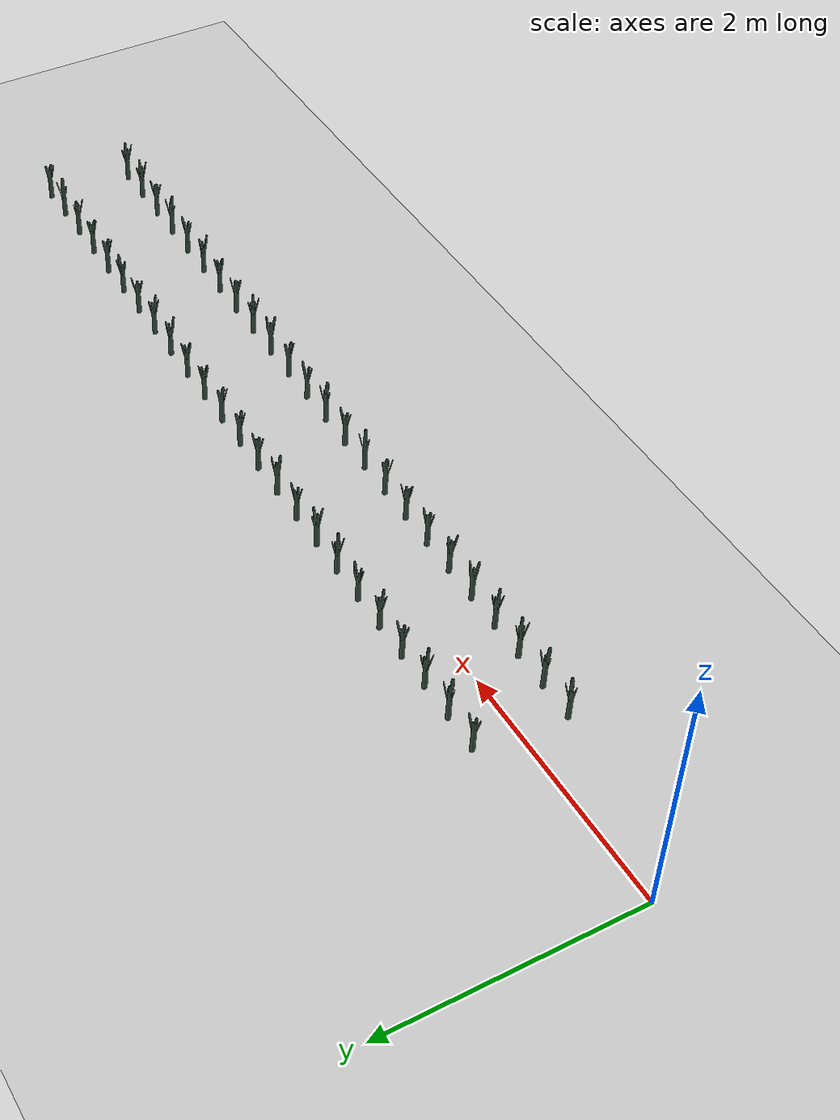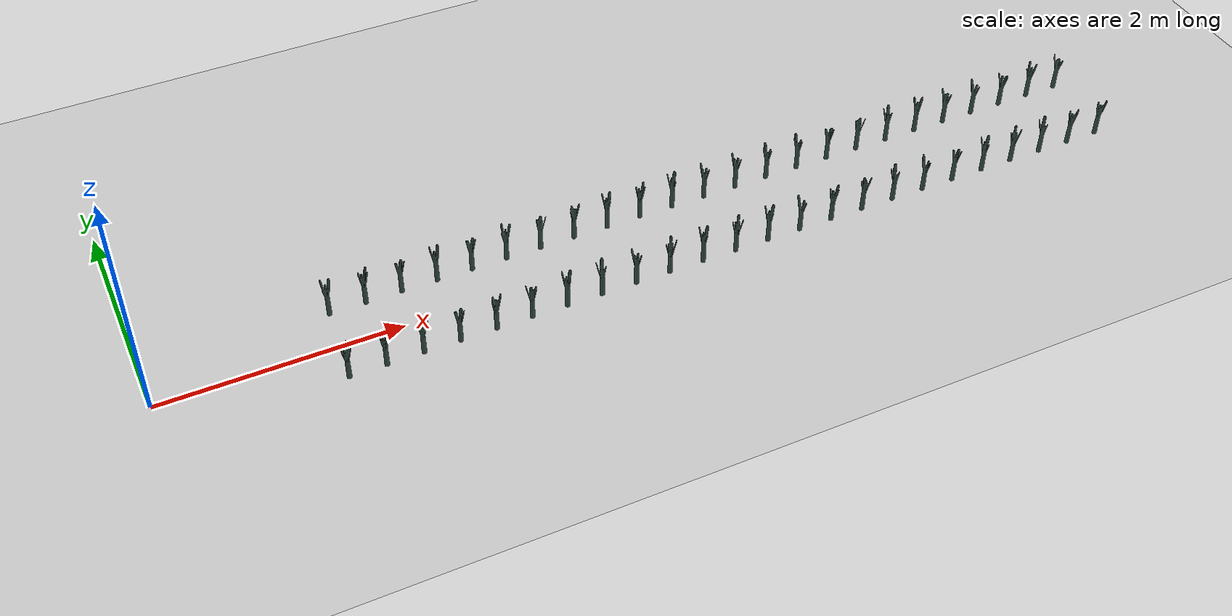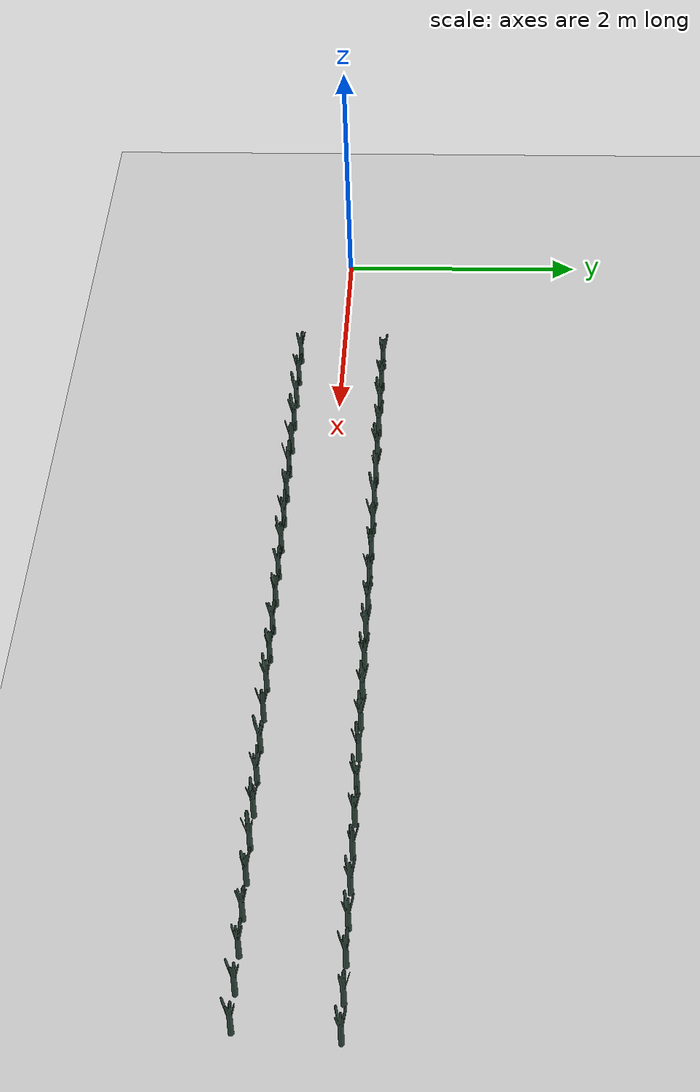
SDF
<sdf version="1.6">
 <world name="default">
  <light name="sun" type="directional">
   <pose>0 0 10 0 -0 0</pose>
   <diffuse>0.5 0.5 0.5 1</diffuse>
   <specular>0.1 0.1 0.1 1</specular>
   <attenuation>
    <range>1000</range>
    <constant>0.9</constant>
    <linear>0.01</linear>
    <quadratic>0.001</quadratic>
   </attenuation>
   <direction>0.9 0.5 -1</direction>
  </light>
  <scene><background>130 200 255 1</background><ambient>130 140 140 1</ambient></scene>
  <include><uri>model://dirt_plane</uri></include>
  <include><uri>model://Leek</uri><pose>1.500000 0.350000 0.15 0 0 101.108923</pose><static>0</static></include>
  <include>
   <uri>model://Leek</uri>
   <pose>1.800000 0.350000 0.15 0 0 -176.831590</pose>
   <static>0</static>
  </include>
  <include><uri>model://Leek</uri><pose>2.100000 0.350000 0.15 0 0 142.051048</pose><static>0</static></include>
  <include><uri>model://Leek</uri><pose>2.400000 0.350000 0.15 0 0 -99.824614</pose><static>0</static></include>
  <include>
   <uri>model://Leek</uri>
   <pose>2.700000 0.350000 0.15 0 0 -178.543748</pose>
   <static>0</static>
  </include>
  <include><uri>model://Leek</uri><pose>3.000000 0.350000 0.15 0 0 151.050343</pose><static>0</static></include>
  <include><uri>model://Leek</uri><pose>3.300000 0.350000 0.15 0 0 -8.514408</pose><static>0</static></include>
  <include><uri>model://Leek</uri><pose>3.600000 0.350000 0.15 0 0 -51.902753</pose><static>0</static></include>
  <include>
   <uri>model://Leek</uri>
   <pose>3.900000 0.350000 0.15 0 0 -118.733525</pose>
   <static>0</static>
  </include>
  <include><uri>model://Leek</uri><pose>4.200000 0.350000 0.15 0 0 130.857133</pose><static>0</static></include>
  <include><uri>model://Leek</uri><pose>4.500000 0.350000 0.15 0 0 44.776679</pose><static>0</static></include>
  <include><uri>model://Leek</uri><pose>4.800000 0.350000 0.15 0 0 96.355749</pose><static>0</static></include>
  <include><uri>model://Leek</uri><pose>5.100000 0.350000 0.15 0 0 -4.126046</pose><static>0</static></include>
  <include><uri>model://Leek</uri><pose>5.400000 0.350000 0.15 0 0 -17.148401</pose><static>0</static></include>
  <include><uri>model://Leek</uri><pose>5.700000 0.350000 0.15 0 0 158.810461</pose><static>0</static></include>
  <include><uri>model://Leek</uri><pose>6.000000 0.350000 0.15 0 0 -71.937799</pose><static>0</static></include>
  <include><uri>model://Leek</uri><pose>6.300000 0.350000 0.15 0 0 129.441746</pose><static>0</static></include>
  <include><uri>model://Leek</uri><pose>6.600000 0.350000 0.15 0 0 95.390136</pose><static>0</static></include>
  <include><uri>model://Leek</uri><pose>6.900000 0.350000 0.15 0 0 -94.082000</pose><static>0</static></include>
  <include><uri>model://Leek</uri><pose>7.200000 0.350000 0.15 0 0 -41.823752</pose><static>0</static></include>
  <include><uri>model://Leek</uri><pose>7.500000 0.350000 0.15 0 0 -60.916794</pose><static>0</static></include>
  <include><uri>model://Leek</uri><pose>7.800000 0.350000 0.15 0 0 65.629379</pose><static>0</static></include>
  <include><uri>model://Leek</uri><pose>8.100000 0.350000 0.15 0 0 -82.032940</pose><static>0</static></include>
  <include><uri>model://Leek</uri><pose>8.400000 0.350000 0.15 0 0 108.994351</pose><static>0</static></include>
  <include>
   <uri>model://Leek</uri>
   <pose>1.430914 -0.350000 0.15 0 0 -151.330276</pose>
   <static>0</static>
  </include>
  <include><uri>model://Leek</uri><pose>1.730914 -0.350000 0.15 0 0 24.126740</pose><static>0</static></include>
  <include>
   <uri>model://Leek</uri>
   <pose>2.030914 -0.350000 0.15 0 0 -171.892281</pose>
   <static>0</static>
  </include>
  <include>
   <uri>model://Leek</uri>
   <pose>2.330914 -0.350000 0.15 0 0 -140.767481</pose>
   <static>0</static>
  </include>
  <include><uri>model://Leek</uri><pose>2.630914 -0.350000 0.15 0 0 92.794988</pose><static>0</static></include>
  <include>
   <uri>model://Leek</uri>
   <pose>2.930914 -0.350000 0.15 0 0 109.783734</pose>
   <static>0</static>
  </include>
  <include><uri>model://Leek</uri><pose>3.230914 -0.350000 0.15 0 0 6.889990</pose><static>0</static></include>
  <include>
   <uri>model://Leek</uri>
   <pose>3.530914 -0.350000 0.15 0 0 -124.414059</pose>
   <static>0</static>
  </include>
  <include>
   <uri>model://Leek</uri>
   <pose>3.830914 -0.350000 0.15 0 0 -66.837687</pose>
   <static>0</static>
  </include>
  <include>
   <uri>model://Leek</uri>
   <pose>4.130914 -0.350000 0.15 0 0 -151.311238</pose>
   <static>0</static>
  </include>
  <include><uri>model://Leek</uri><pose>4.430914 -0.350000 0.15 0 0 0.550941</pose><static>0</static></include>
  <include>
   <uri>model://Leek</uri>
   <pose>4.730914 -0.350000 0.15 0 0 -63.550092</pose>
   <static>0</static>
  </include>
  <include>
   <uri>model://Leek</uri>
   <pose>5.030914 -0.350000 0.15 0 0 -156.600726</pose>
   <static>0</static>
  </include>
  <include>
   <uri>model://Leek</uri>
   <pose>5.330914 -0.350000 0.15 0 0 108.771768</pose>
   <static>0</static>
  </include>
  <include><uri>model://Leek</uri><pose>5.630914 -0.350000 0.15 0 0 86.608749</pose><static>0</static></include>
  <include>
   <uri>model://Leek</uri>
   <pose>5.930914 -0.350000 0.15 0 0 -159.203616</pose>
   <static>0</static>
  </include>
  <include>
   <uri>model://Leek</uri>
   <pose>6.230914 -0.350000 0.15 0 0 -36.438583</pose>
   <static>0</static>
  </include>
  <include>
   <uri>model://Leek</uri>
   <pose>6.530914 -0.350000 0.15 0 0 139.970295</pose>
   <static>0</static>
  </include>
  <include>
   <uri>model://Leek</uri>
   <pose>6.830914 -0.350000 0.15 0 0 110.207202</pose>
   <static>0</static>
  </include>
  <include>
   <uri>model://Leek</uri>
   <pose>7.130914 -0.350000 0.15 0 0 -81.076236</pose>
   <static>0</static>
  </include>
  <include><uri>model://Leek</uri><pose>7.430914 -0.350000 0.15 0 0 99.874804</pose><static>0</static></include>
  <include>
   <uri>model://Leek</uri>
   <pose>7.730914 -0.350000 0.15 0 0 -99.541568</pose>
   <static>0</static>
  </include>
  <include>
   <uri>model://Leek</uri>
   <pose>8.030914 -0.350000 0.15 0 0 -52.057981</pose>
   <static>0</static>
  </include>
  <include><uri>model://Leek</uri><pose>8.330914 -0.350000 0.15 0 0 -1.848746</pose><static>0</static></include>
 </world>
</sdf>

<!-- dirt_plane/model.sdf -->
<sdf version="1.4">
<model name="dirt_plane">
  <static>true</static>
    <link name="link">
      <collision name="collision">
        <geometry>
          <plane>
            <normal>0 0 1</normal>
            <size>100 100</size>
          </plane>
        </geometry>
        <surface>
          <friction>
            <ode>
              <mu>0.99</mu>
              <mu2>0.99</mu2>
            </ode>
          </friction>
        </surface>
      </collision>
      <visual name="visual">
        <cast_shadows>false</cast_shadows>
        <geometry>
          <plane>
            <normal>0 0 1</normal>
            <size>100 100</size>
          </plane>
        </geometry>
        <material>
          <script>
            <uri>model://ground_plane/materials/scripts/my_ground_plane.material</uri>
            <uri>model://ground_plane/materials/textures</uri>
            <name>my_ground_plane/Dirt</name>
          </script>
        </material>
      </visual>
    </link>
  </model>
</sdf>

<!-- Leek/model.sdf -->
<sdf version='1.6'>
  <model name='Leek'>
    <link name='link'>
      <pose frame=''>0 0 0 0 -0 0</pose>
      <inertial>
        <mass>1</mass>
        <inertia>
          <ixx>0.145833</ixx>
          <ixy>0</ixy>
          <ixz>0</ixz>
          <iyy>0.145833</iyy>
          <iyz>0</iyz>
          <izz>0.125</izz>
        </inertia>
        <pose frame=''>0 0 0 0 -0 0</pose>
      </inertial>
      <self_collide>0</self_collide>
      <kinematic>0</kinematic>
      <gravity>1</gravity>
      <visual name='visual'>
        <geometry>
          <mesh>
            <uri>model://Leek/Poireau.dae</uri>
            <scale>1 1 1</scale>
          </mesh>
        </geometry>
        <material>
          <script>
            <name>Gazebo/Grey</name>
            <uri>file://media/materials/scripts/gazebo.material</uri>
          </script>
          <ambient>0.3 0.6 0.5 0</ambient>
          <diffuse>0.2 0.3 0.25 0</diffuse>
          <specular>0 0 0 1</specular>
          <emissive>0 0 0 1</emissive>
          <shader type='vertex'>
            <normal_map>__default__</normal_map>
          </shader>
        </material>
        <pose frame=''>0 0 -0.08 0 -0 0</pose>
        <cast_shadows>1</cast_shadows>
        <transparency>0</transparency>
      </visual>
      <collision name='collision'>
        <laser_retro>0</laser_retro>
        <max_contacts>10</max_contacts>
        <pose frame=''>0 0 0 0 -0 0</pose>
        <geometry>
          <cylinder>
            <radius>0.02</radius>
            <length>0.25</length>
          </cylinder>
        </geometry>
        <surface>
          <friction>
            <ode>
              <mu>1</mu>
              <mu2>1</mu2>
              <fdir1>0 0 0</fdir1>
              <slip1>0</slip1>
              <slip2>0</slip2>
            </ode>
            <torsional>
              <coefficient>1</coefficient>
              <patch_radius>0</patch_radius>
              <surface_radius>0</surface_radius>
              <use_patch_radius>1</use_patch_radius>
              <ode>
                <slip>0</slip>
              </ode>
            </torsional>
          </friction>
          <bounce>
            <restitution_coefficient>0</restitution_coefficient>
            <threshold>1e+06</threshold>
          </bounce>
          <contact>
            <collide_without_contact>0</collide_without_contact>
            <collide_without_contact_bitmask>1</collide_without_contact_bitmask>
            <collide_bitmask>1</collide_bitmask>
            <ode>
              <soft_cfm>0</soft_cfm>
              <soft_erp>0.2</soft_erp>
              <kp>1e+13</kp>
              <kd>1</kd>
              <max_vel>0.01</max_vel>
              <min_depth>0</min_depth>
            </ode>
            <bullet>
              <split_impulse>1</split_impulse>
              <split_impulse_penetration_threshold>-0.01</split_impulse_penetration_threshold>
              <soft_cfm>0</soft_cfm>
              <soft_erp>0.2</soft_erp>
              <kp>1e+13</kp>
              <kd>1</kd>
            </bullet>
          </contact>
        </surface>
      </collision>
    </link>
    <static>0</static>
    <allow_auto_disable>1</allow_auto_disable>
  </model>
</sdf>
